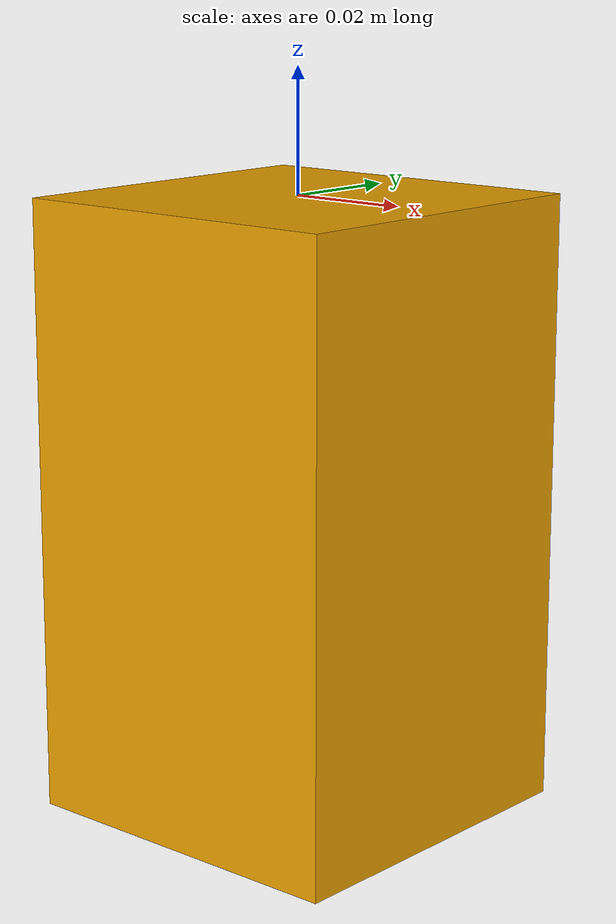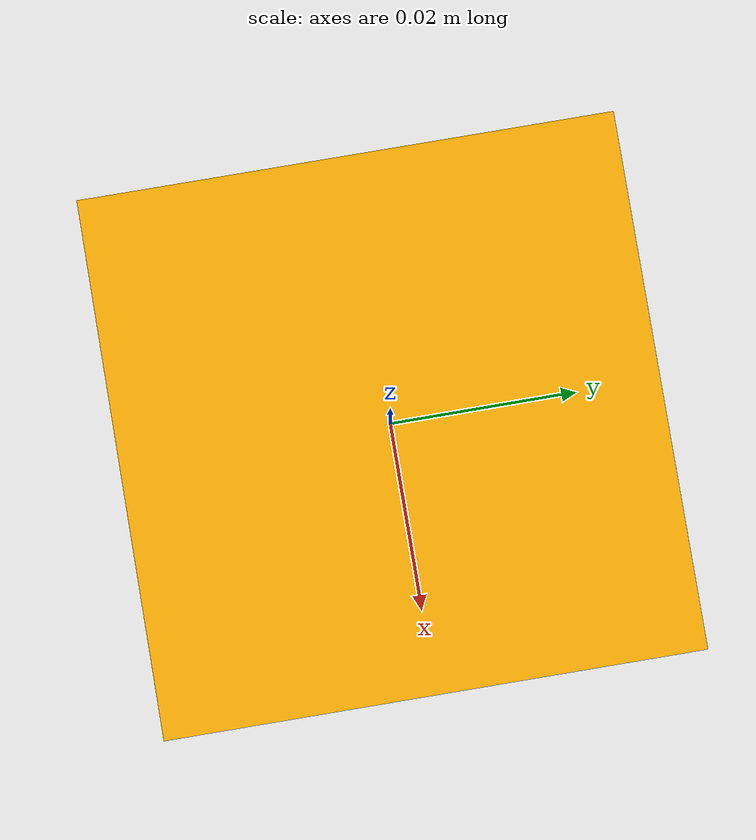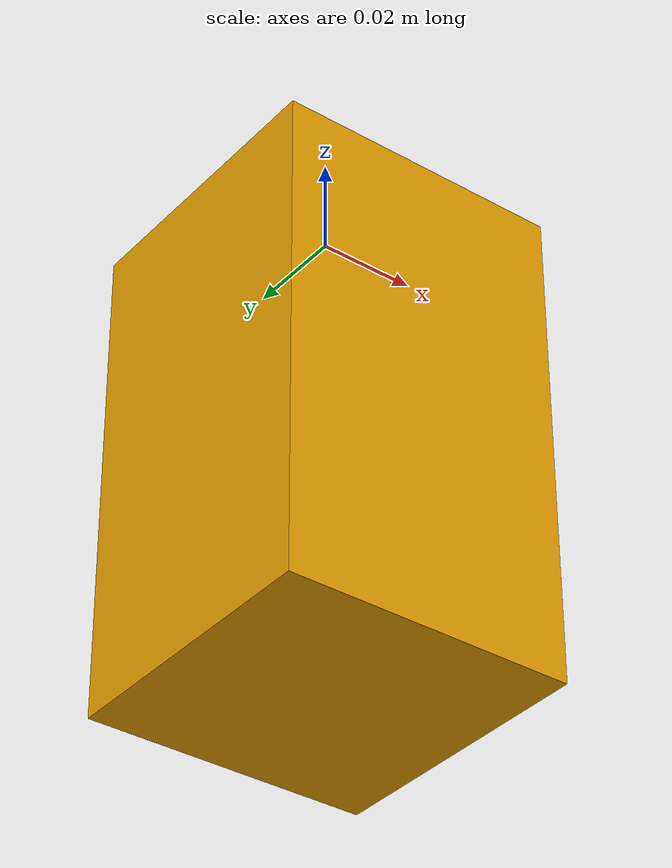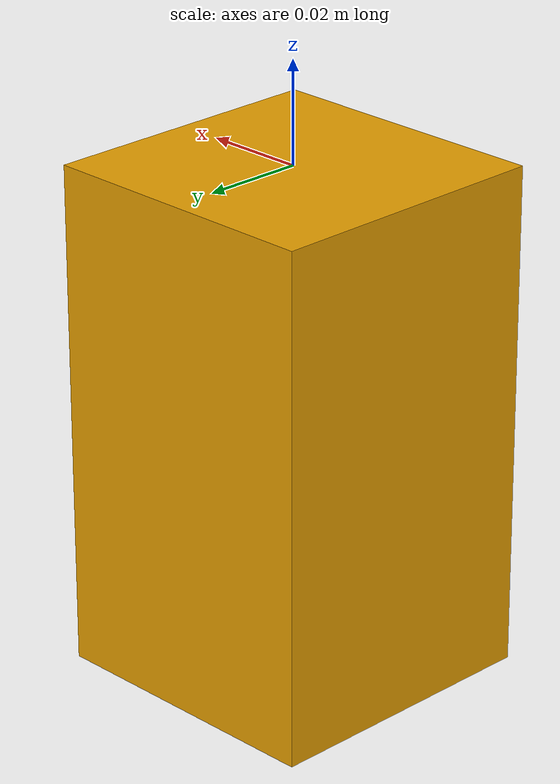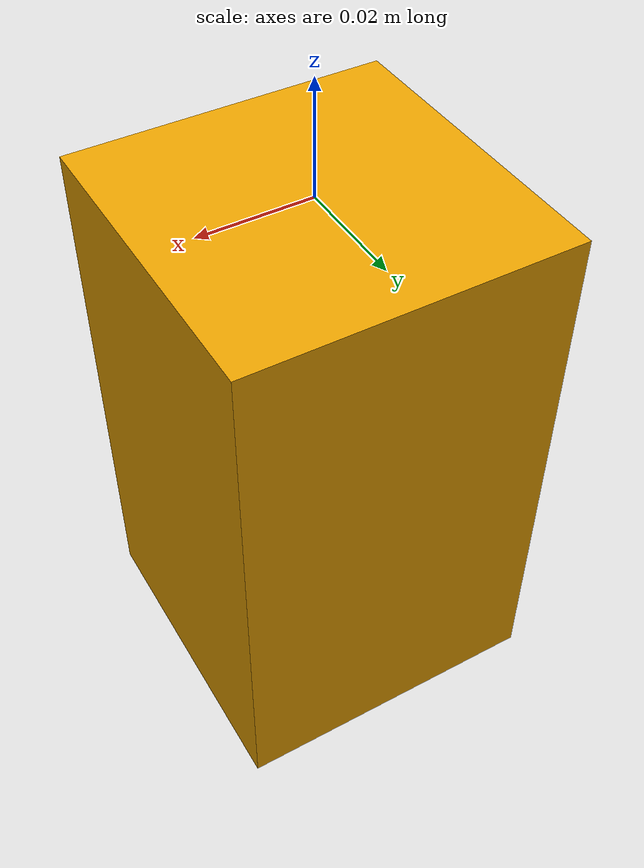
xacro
<?xml version="1.0"?>
<robot name="qr_$(arg type)_block" xmlns:xacro="http://ros.org/wiki/xacro">

    <xacro:include filename= "$(find kortex_scripts)/objects/macros.xacro"/>

    <xacro:property name="block_lenght" value="0.058"/>
    <xacro:property name="block_width" value="0.058"/>
    <xacro:property name="block_height" value="0.1"/>
    <xacro:property name="block_mass" value="0.1"/>

    <xacro:arg name="type" default="block" />

    <xacro:macro name="qr_grasp_block" params ="type" >
      <link name='qr_grasp_block_base_link'>
 	    <inertial>
            <origin xyz="0 0 0" rpy="0 0 0"/>
            <mass value="${block_mass}" />
            <xacro:box_inertia mass="${block_mass}" x="${block_lenght}" y="${block_width}" z="${block_height}" />
        </inertial>
            <collision>
                <origin xyz="0 0 0" rpy="0 0 0"/>
                <geometry>
                    <box size="${block_lenght} ${block_width} ${block_height}"/>
                </geometry>
            </collision>
        <visual>
            <origin xyz="0 0 -0.05" rpy="0 0 0" />
            <geometry>
                <xacro:if value="${type == 'tomato'}">
                    <mesh filename="/home/alex/mor/kinova_dev_alex/catkin_workspace/src/ros_kortex/kortex_scripts/objects/models/tomato_qr_grasp_block.dae" />
                </xacro:if>
                <xacro:if value="${type == 'pepper'}">
                    <mesh filename="/home/alex/mor/kinova_dev_alex/catkin_workspace/src/ros_kortex/kortex_scripts/objects/models/pepper_qr_grasp_block.dae" />
                </xacro:if>
                <xacro:if value="${type == 'block'}">
                    <box size="${block_lenght} ${block_width} ${block_height}"/>
                </xacro:if>
            </geometry>
        </visual>
        </link>

        <gazebo reference="qr_grasp_block_base_link">
            <kp>100000.0</kp>
            <kd>100.0</kd>
            <mu1>100</mu1>
            <mu2>100</mu2>
        </gazebo>
    </xacro:macro>

    <xacro:qr_grasp_block type="$(arg type)"/>

</robot>
<!--xacro qr_tomato_grasp_block.xacro > tmp.urdf && check_urdf tmp.urdf && rm tmp.urdf-->

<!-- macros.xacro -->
<robot xmlns:xacro="http://www.ros.org/wiki/xacro">

    <xacro:macro  name="cylinder_inertia" params="mass r l">
      <inertia  ixx="${mass*(3*r*r+l*l)/12}" ixy = "0" ixz = "0"
                iyy="${mass*(3*r*r+l*l)/12}" iyz = "0"
                izz="${mass*(r*r)/2}" />
    </xacro:macro >

    <xacro:macro name="box_inertia" params="mass x y z">
      <inertia  ixx="${mass*(y*y+z*z)/12}" ixy = "0" ixz = "0"
                iyy="${mass*(x*x+z*z)/12}" iyz = "0"
                izz="${mass*(x*x+z*z)/12}"
      />
    </xacro:macro>

  <xacro:macro name="sphere_inertia" params="mass r">
    <inertia
          ixx="${2*mass*r*r/5}" ixy = "0" ixz = "0"
          iyy="${2*mass*r*r/5}" iyz = "0"
          izz="${2*mass*r*r/5}"
    />
  </xacro:macro>

</robot>
